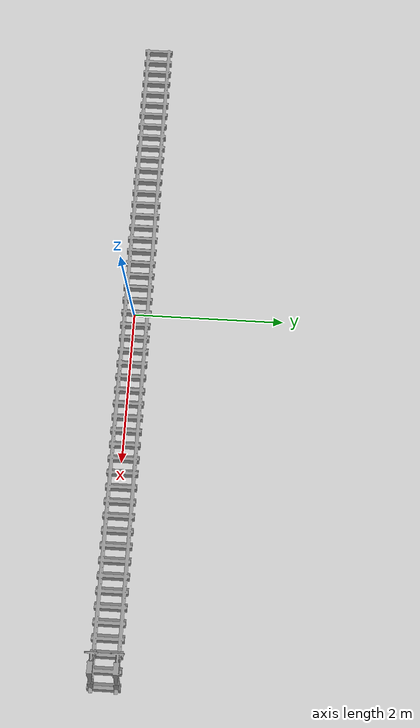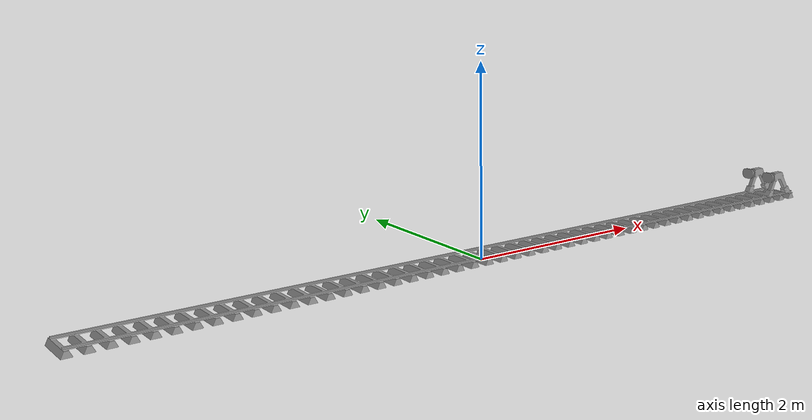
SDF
<?xml version='1.0'?>
<sdf version='1.7'>
  <model name='gleis_anfang'>
    <link name='link_2'>
      <inertial>
        <mass>1</mass>
        <inertia>
          <ixx>0.166667</ixx>
          <ixy>0</ixy>
          <ixz>0</ixz>
          <iyy>0.166667</iyy>
          <iyz>0</iyz>
          <izz>0.166667</izz>
        </inertia>
      </inertial>
      <pose>0 0.008744 -0.00103 -0.088652 0 0</pose>
      <self_collide>0</self_collide>
      <enable_wind>0</enable_wind>
      <kinematic>0</kinematic>
      <visual name='visual'>
        <pose>0.5148 0.021 -0.005 0.1 -0 0</pose>
        <geometry>
          <mesh>
            <uri>model://gleis_ende/meshes/Gleis_hat_Bock.stl</uri>
            <scale>0.001 0.001 0.001</scale>
          </mesh>
        </geometry>
        <material>
          <lighting>1</lighting>
          <script>
            <uri>file://media/materials/scripts/gazebo.material</uri>
            <name>Gazebo/Grey</name>
          </script>
          <shader type='pixel'/>
        </material>
        <transparency>0</transparency>
        <cast_shadows>1</cast_shadows>
      </visual>
      <collision name='collision'>
        <laser_retro>0</laser_retro>
        <max_contacts>10</max_contacts>
        <pose>0.5148 0.021 -0.005 0.1 -0 0</pose>
        <geometry>
          <mesh>
            <uri>model://gleis_ende/meshes/Gleis_hat_Bock.stl</uri>
            <scale>0.001 0.001 0.001</scale>
          </mesh>
        </geometry>
        <surface>
          <friction>
            <ode>
              <mu>1</mu>
              <mu2>1</mu2>
              <fdir1>0 0 0</fdir1>
              <slip1>0</slip1>
              <slip2>0</slip2>
            </ode>
            <torsional>
              <coefficient>1</coefficient>
              <patch_radius>0</patch_radius>
              <surface_radius>0</surface_radius>
              <use_patch_radius>1</use_patch_radius>
              <ode>
                <slip>0</slip>
              </ode>
            </torsional>
          </friction>
          <bounce>
            <restitution_coefficient>0</restitution_coefficient>
            <threshold>1e+06</threshold>
          </bounce>
          <contact>
            <collide_without_contact>0</collide_without_contact>
            <collide_without_contact_bitmask>1</collide_without_contact_bitmask>
            <collide_bitmask>1</collide_bitmask>
            <ode>
              <soft_cfm>0</soft_cfm>
              <soft_erp>0.2</soft_erp>
              <kp>1e+13</kp>
              <kd>1</kd>
              <max_vel>0.01</max_vel>
              <min_depth>0</min_depth>
            </ode>
            <bullet>
              <split_impulse>1</split_impulse>
              <split_impulse_penetration_threshold>-0.01</split_impulse_penetration_threshold>
              <soft_cfm>0</soft_cfm>
              <soft_erp>0.2</soft_erp>
              <kp>1e+13</kp>
              <kd>1</kd>
            </bullet>
          </contact>
        </surface>
      </collision>
    </link>
    <static>1</static>
    <allow_auto_disable>1</allow_auto_disable>
  </model>
</sdf>
